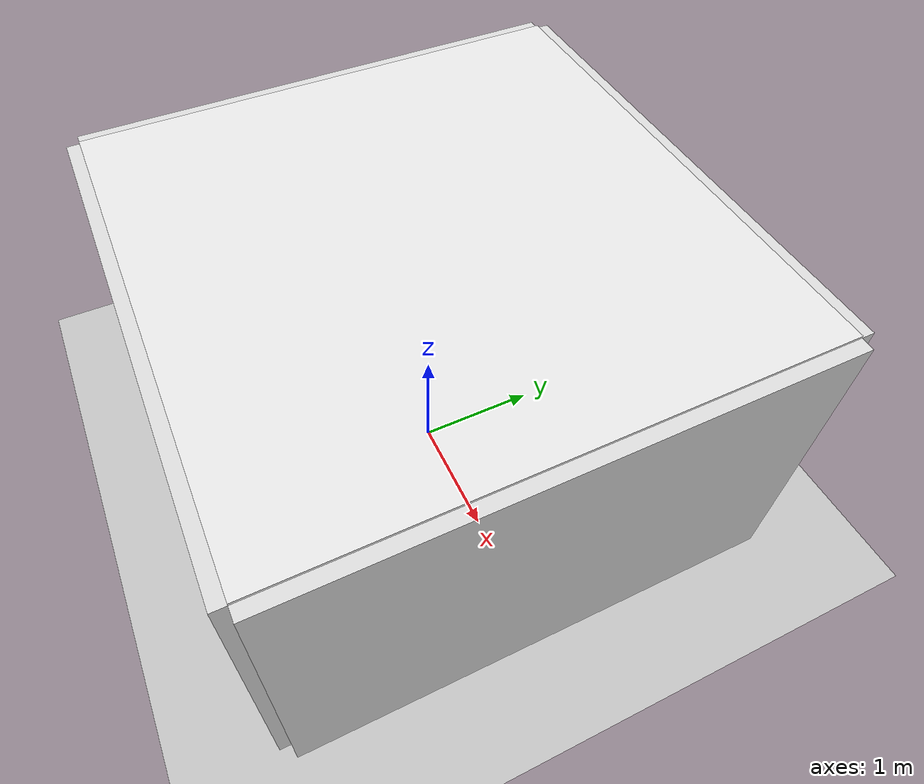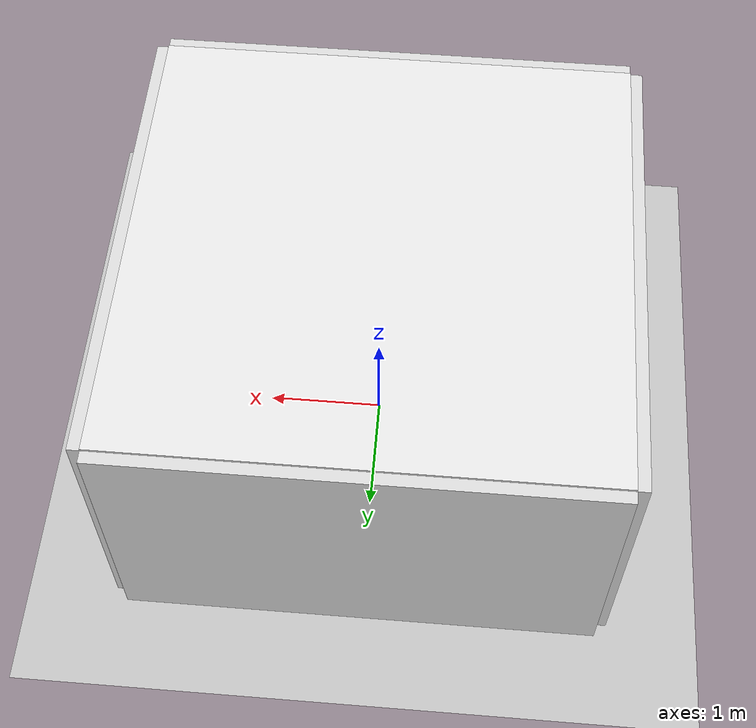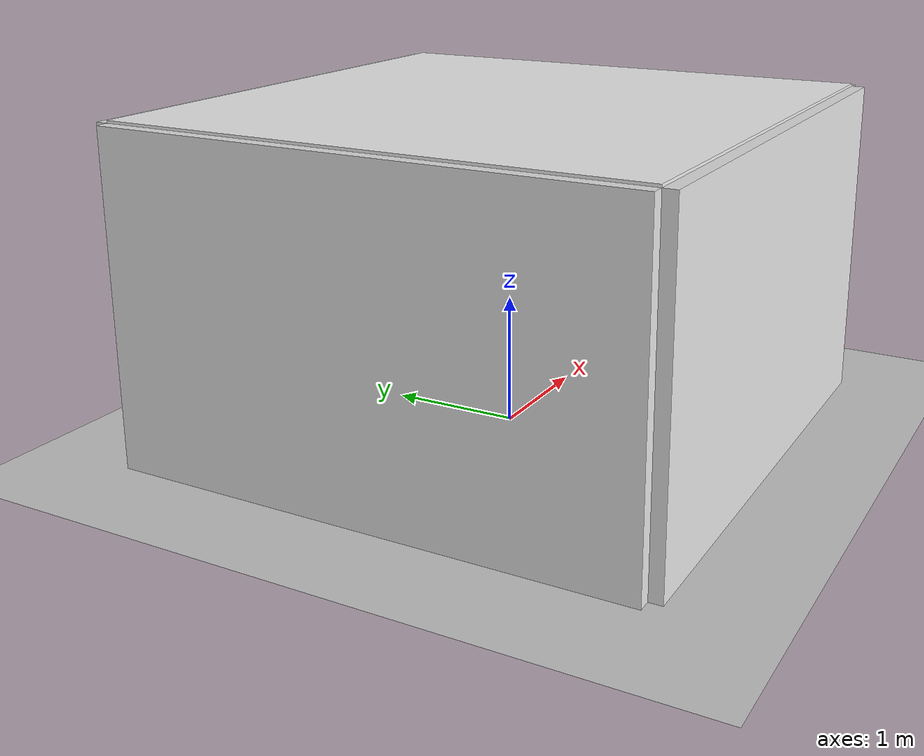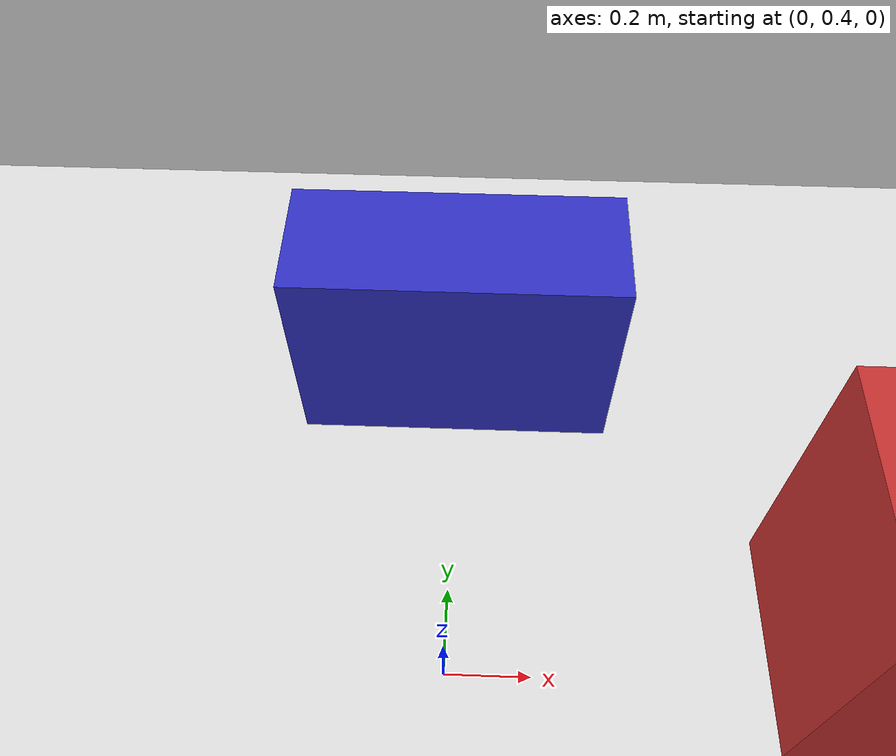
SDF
<?xml version="1.0" ?>
<sdf version="1.8">
  <world name="tracking_room">
    <!-- Physics -->
    <physics name="1ms" type="ignored">
      <max_step_size>0.001</max_step_size>
      <real_time_factor>1.0</real_time_factor>
    </physics>

    <!-- Required plugins for Ignition Gazebo -->
    <plugin filename="ignition-gazebo-physics-system" name="ignition::gazebo::systems::Physics"/>
    <plugin filename="ignition-gazebo-user-commands-system" name="ignition::gazebo::systems::UserCommands"/>
    <plugin filename="ignition-gazebo-scene-broadcaster-system" name="ignition::gazebo::systems::SceneBroadcaster"/>
    <plugin filename="ignition-gazebo-sensors-system" name="ignition::gazebo::systems::Sensors">
      <render_engine>ogre2</render_engine>
    </plugin>

    <!-- Lighting -->
    <light type="directional" name="sun">
      <cast_shadows>true</cast_shadows>
      <pose>0 0 10 0 0 0</pose>
      <diffuse>0.8 0.8 0.8 1</diffuse>
      <specular>0.2 0.2 0.2 1</specular>
      <direction>-0.5 0.1 -0.9</direction>
    </light>

    <light type="point" name="ceiling_light">
      <pose>0 0 2.3 0 0 0</pose>
      <diffuse>0.8 0.8 0.8 1</diffuse>
      <specular>0.1 0.1 0.1 1</specular>
      <attenuation>
        <range>10</range>
        <constant>0.5</constant>
        <linear>0.01</linear>
        <quadratic>0.001</quadratic>
      </attenuation>
      <cast_shadows>false</cast_shadows>
    </light>

    <!-- Ground Plane -->
    <model name="ground_plane">
      <static>true</static>
      <link name="link">
        <collision name="collision">
          <geometry>
            <plane>
              <normal>0 0 1</normal>
              <size>10 10</size>
            </plane>
          </geometry>
        </collision>
        <visual name="visual">
          <geometry>
            <plane>
              <normal>0 0 1</normal>
              <size>10 10</size>
            </plane>
          </geometry>
          <material>
            <ambient>0.8 0.8 0.8 1</ambient>
            <diffuse>0.8 0.8 0.8 1</diffuse>
          </material>
        </visual>
      </link>
    </model>

    <!-- Room: 4m x 4m x 2.5m -->
    <!-- Floor -->
    <model name="floor">
      <static>true</static>
      <pose>0 0 -0.01 0 0 0</pose>
      <link name="link">
        <collision name="collision">
          <geometry>
            <box><size>4.0 4.0 0.02</size></box>
          </geometry>
        </collision>
        <visual name="visual">
          <geometry>
            <box><size>4.0 4.0 0.02</size></box>
          </geometry>
          <material>
            <ambient>0.9 0.9 0.9 1</ambient>
            <diffuse>0.9 0.9 0.9 1</diffuse>
          </material>
        </visual>
      </link>
    </model>

    <!-- Ceiling -->
    <model name="ceiling">
      <static>true</static>
      <pose>0 0 2.51 0 0 0</pose>
      <link name="link">
        <collision name="collision">
          <geometry>
            <box><size>4.0 4.0 0.02</size></box>
          </geometry>
        </collision>
        <visual name="visual">
          <geometry>
            <box><size>4.0 4.0 0.02</size></box>
          </geometry>
          <material>
            <ambient>0.95 0.95 0.95 1</ambient>
            <diffuse>0.95 0.95 0.95 1</diffuse>
          </material>
        </visual>
      </link>
    </model>

    <!-- Walls (2.5m tall) -->
    <!-- North Wall -->
    <model name="wall_north">
      <static>true</static>
      <pose>0 2.05 1.25 0 0 0</pose>
      <link name="link">
        <collision name="collision">
          <geometry>
            <box><size>4.0 0.1 2.5</size></box>
          </geometry>
        </collision>
        <visual name="visual">
          <geometry>
            <box><size>4.0 0.1 2.5</size></box>
          </geometry>
          <material>
            <ambient>0.7 0.7 0.7 1</ambient>
            <diffuse>0.9 0.9 0.9 1</diffuse>
          </material>
        </visual>
      </link>
    </model>

    <!-- South Wall -->
    <model name="wall_south">
      <static>true</static>
      <pose>0 -2.05 1.25 0 0 0</pose>
      <link name="link">
        <collision name="collision">
          <geometry>
            <box><size>4.0 0.1 2.5</size></box>
          </geometry>
        </collision>
        <visual name="visual">
          <geometry>
            <box><size>4.0 0.1 2.5</size></box>
          </geometry>
          <material>
            <ambient>0.7 0.7 0.7 1</ambient>
            <diffuse>0.9 0.9 0.9 1</diffuse>
          </material>
        </visual>
      </link>
    </model>

    <!-- East Wall -->
    <model name="wall_east">
      <static>true</static>
      <pose>2.05 0 1.25 0 0 0</pose>
      <link name="link">
        <collision name="collision">
          <geometry>
            <box><size>0.1 4.0 2.5</size></box>
          </geometry>
        </collision>
        <visual name="visual">
          <geometry>
            <box><size>0.1 4.0 2.5</size></box>
          </geometry>
          <material>
            <ambient>0.7 0.7 0.7 1</ambient>
            <diffuse>0.9 0.9 0.9 1</diffuse>
          </material>
        </visual>
      </link>
    </model>

    <!-- West Wall -->
    <model name="wall_west">
      <static>true</static>
      <pose>-2.05 0 1.25 0 0 0</pose>
      <link name="link">
        <collision name="collision">
          <geometry>
            <box><size>0.1 4.0 2.5</size></box>
          </geometry>
        </collision>
        <visual name="visual">
          <geometry>
            <box><size>0.1 4.0 2.5</size></box>
          </geometry>
          <material>
            <ambient>0.7 0.7 0.7 1</ambient>
            <diffuse>0.9 0.9 0.9 1</diffuse>
          </material>
        </visual>
      </link>
    </model>

    <!-- Obstacles -->
    <model name="obstacle_1">
      <static>true</static>
      <pose>1.0 0.5 0.4 0 0 0</pose>
      <link name="link">
        <collision name="collision">
          <geometry>
            <box><size>0.5 0.5 0.8</size></box>
          </geometry>
        </collision>
        <visual name="visual">
          <geometry>
            <box><size>0.5 0.5 0.8</size></box>
          </geometry>
          <material>
            <ambient>0.8 0.2 0.2 1</ambient>
            <diffuse>0.8 0.2 0.2 1</diffuse>
          </material>
        </visual>
      </link>
    </model>

    <model name="obstacle_2">
      <static>true</static>
      <pose>-0.8 -0.7 0.5 0 0 0</pose>
      <link name="link">
        <collision name="collision">
          <geometry>
            <cylinder>
              <radius>0.3</radius>
              <length>1.0</length>
            </cylinder>
          </geometry>
        </collision>
        <visual name="visual">
          <geometry>
            <cylinder>
              <radius>0.3</radius>
              <length>1.0</length>
            </cylinder>
          </geometry>
          <material>
            <ambient>0.2 0.8 0.2 1</ambient>
            <diffuse>0.2 0.8 0.2 1</diffuse>
          </material>
        </visual>
      </link>
    </model>

    <model name="obstacle_3">
      <static>true</static>
      <pose>0.0 1.2 0.3 0 0 0</pose>
      <link name="link">
        <collision name="collision">
          <geometry>
            <box><size>0.8 0.3 0.6</size></box>
          </geometry>
        </collision>
        <visual name="visual">
          <geometry>
            <box><size>0.8 0.3 0.6</size></box>
          </geometry>
          <material>
            <ambient>0.2 0.2 0.8 1</ambient>
            <diffuse>0.2 0.2 0.8 1</diffuse>
          </material>
        </visual>
      </link>
    </model>

    <!-- Camera 1 (NE corner) - 45° down, looking at center -->
    <model name="camera_1">
      <static>true</static>
      <pose>1.8 1.8 2.4 0 0.785 -2.356</pose>
      <link name="link">
        <visual name="visual">
          <geometry>
            <box><size>0.08 0.08 0.06</size></box>
          </geometry>
          <material>
            <ambient>0.1 0.1 0.1 1</ambient>
            <diffuse>0.2 0.2 0.2 1</diffuse>
          </material>
        </visual>
        <sensor name="rgbd_camera" type="rgbd_camera">
          <update_rate>30</update_rate>
          <topic>/cameras/camera_1</topic>
          <camera>
            <horizontal_fov>1.047</horizontal_fov>
            <image>
              <width>640</width>
              <height>480</height>
              <format>R8G8B8</format>
            </image>
            <depth_camera>
              <clip>
                <near>0.1</near>
                <far>10.0</far>
              </clip>
            </depth_camera>
            <clip>
              <near>0.1</near>
              <far>10.0</far>
            </clip>
          </camera>
        </sensor>
      </link>
    </model>

    <!-- Camera 2 (NW corner) -->
    <model name="camera_2">
      <static>true</static>
      <pose>-1.8 1.8 2.4 0 0.785 -0.785</pose>
      <link name="link">
        <visual name="visual">
          <geometry>
            <box><size>0.08 0.08 0.06</size></box>
          </geometry>
          <material>
            <ambient>0.1 0.1 0.1 1</ambient>
            <diffuse>0.2 0.2 0.2 1</diffuse>
          </material>
        </visual>
        <sensor name="rgbd_camera" type="rgbd_camera">
          <update_rate>30</update_rate>
          <topic>/cameras/camera_2</topic>
          <camera>
            <horizontal_fov>1.047</horizontal_fov>
            <image>
              <width>640</width>
              <height>480</height>
              <format>R8G8B8</format>
            </image>
            <depth_camera>
              <clip>
                <near>0.1</near>
                <far>10.0</far>
              </clip>
            </depth_camera>
            <clip>
              <near>0.1</near>
              <far>10.0</far>
            </clip>
          </camera>
        </sensor>
      </link>
    </model>

    <!-- Camera 3 (SW corner) -->
    <model name="camera_3">
      <static>true</static>
      <pose>-1.8 -1.8 2.4 0 0.785 0.785</pose>
      <link name="link">
        <visual name="visual">
          <geometry>
            <box><size>0.08 0.08 0.06</size></box>
          </geometry>
          <material>
            <ambient>0.1 0.1 0.1 1</ambient>
            <diffuse>0.2 0.2 0.2 1</diffuse>
          </material>
        </visual>
        <sensor name="rgbd_camera" type="rgbd_camera">
          <update_rate>30</update_rate>
          <topic>/cameras/camera_3</topic>
          <camera>
            <horizontal_fov>1.047</horizontal_fov>
            <image>
              <width>640</width>
              <height>480</height>
              <format>R8G8B8</format>
            </image>
            <depth_camera>
              <clip>
                <near>0.1</near>
                <far>10.0</far>
              </clip>
            </depth_camera>
            <clip>
              <near>0.1</near>
              <far>10.0</far>
            </clip>
          </camera>
        </sensor>
      </link>
    </model>

    <!-- Camera 4 (SE corner) -->
    <model name="camera_4">
      <static>true</static>
      <pose>1.8 -1.8 2.4 0 0.785 2.356</pose>
      <link name="link">
        <visual name="visual">
          <geometry>
            <box><size>0.08 0.08 0.06</size></box>
          </geometry>
          <material>
            <ambient>0.1 0.1 0.1 1</ambient>
            <diffuse>0.2 0.2 0.2 1</diffuse>
          </material>
        </visual>
        <sensor name="rgbd_camera" type="rgbd_camera">
          <update_rate>30</update_rate>
          <topic>/cameras/camera_4</topic>
          <camera>
            <horizontal_fov>1.047</horizontal_fov>
            <image>
              <width>640</width>
              <height>480</height>
              <format>R8G8B8</format>
            </image>
            <depth_camera>
              <clip>
                <near>0.1</near>
                <far>10.0</far>
              </clip>
            </depth_camera>
            <clip>
              <near>0.1</near>
              <far>10.0</far>
            </clip>
          </camera>
        </sensor>
      </link>
    </model>

  </world>
</sdf>
